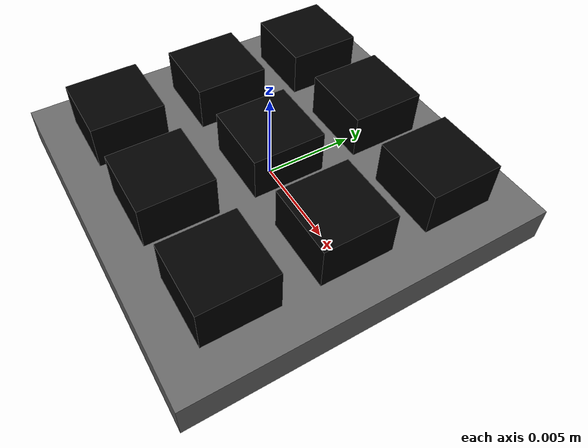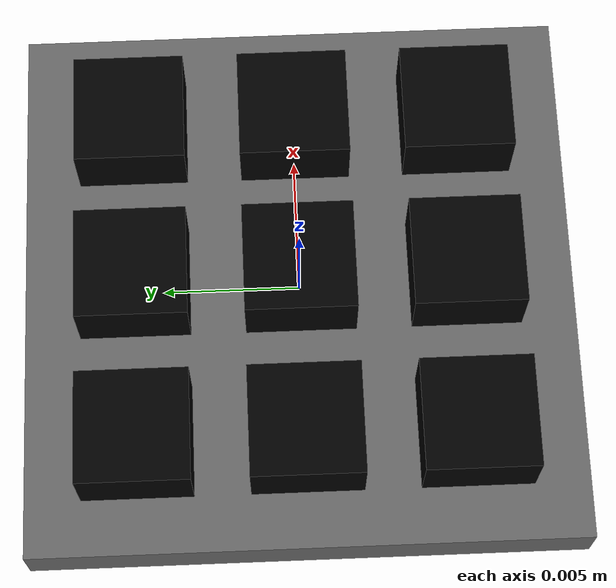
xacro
<?xml version="1.0"?> <!-- 这是版本提示 -->
<robot xmlns:xacro="http://www.ros.org/wiki/xacro">
    <xacro:include filename="$(find robot_description)/urdf/light_robot/common_inertia.xacro"/>

    <!-- 定义整个相机阵列 -->
    <xacro:property name="camera_spacing" value="0.006"/> <!-- 相机间距6mm -->
    <xacro:property name="dense_step" value="${camera_spacing / 2}"/> <!-- 虚拟 dense 步长 s = 3 mm -->
    <xacro:property name="broad_size" value="0.02"/> <!-- 底板 20mm × 20mm -->
    <xacro:property name="cam_size" value="0.004"/> <!-- 相机外观 4mm(要小于间距,否则互相穿模) -->

    <!-- 机器人的camera底板 -->
    <link name="camera_stand_link">
        <!-- 部件的外观描述 -->
        <visual>
            <!-- 沿着自己几何中心偏移和旋转 -->
            <origin xyz="0.0 0.0 0.0" rpy="0.0 0.0 0.0"/>
            <!-- 几何形状 -->
            <geometry>
                <!-- 立方体 -->
                <box size="${broad_size} ${broad_size} 0.002"/>
            </geometry>
            <!-- 材质颜色 -->
            <material name="black">
                <color rgba="0.4 0.4 0.4 1"/>
            </material>
        </visual>
        <collision>
                <!-- 沿着自己几何中心偏移和旋转 -->
                <origin xyz="0.0 0.0 0.0" rpy="0.0 0.0 0.0"/>
                <!-- 几何形状 -->
                <geometry>
                    <!-- 立方体 -->
                    <box size="${broad_size} ${broad_size} 0.002"/>
                </geometry>
                <!-- 材质颜色 -->
                <material name="black">
                    <color rgba="0.4 0.4 0.4 1"/>
                </material>
        </collision>
        <xacro:box_inertia m = "0.1" w="${broad_size}" d="${broad_size}" h="0.002" />
    </link>

    <xacro:macro name ="camera_xacro" params=" index u v">
        <!-- 机器人的camera -->
        <link name="camera_${index}_link">
            <!-- 部件的外观描述 -->
            <visual>
                <!-- 相机外观在本体坐标系中心;实际摆放位置由下面 joint 决定 -->
                <origin xyz="0.0 0.0 0.0" rpy="0.0 0.0 0.0"/>
                <!-- 几何形状 -->
                <geometry>
                    <!-- 立方体 -->
                    <box size="${cam_size} ${cam_size} ${cam_size}"/>
                </geometry>
                <!-- 材质颜色 -->
                <material name="black">
                    <color rgba="0.0 0.0 0.0 1"/>
                </material>
            </visual>
            <collision>
                    <!-- 相机外观在本体坐标系中心;实际摆放位置由下面 joint 决定 -->
                    <origin xyz="0.0 0.0 0.0" rpy="0.0 0.0 0.0"/>
                    <!-- 几何形状 -->
                    <geometry>
                        <!-- 立方体 -->
                        <box size="${cam_size} ${cam_size} ${cam_size}"/>
                    </geometry>
                    <!-- 材质颜色 -->
            </collision>
            <xacro:box_inertia m = "0.1" w="${cam_size}" d="${cam_size}" h="${cam_size}" />
        </link>

        <link name="camera_${index}_optical_link"></link>

        <!-- 机器人的关节，用于组合机器人的部件, type是可动还是不可动 -->
        <joint name="camera_${index}_joint" type="fixed">
            <!-- 关节的父部件 -->
            <parent link="camera_stand_link"/>
            <!-- 关节的子部件 -->
            <child link="camera_${index}_link"/>
            <!-- 物理位置 = dense 角坐标 × dense 步长;z 是贴板高度 -->
            <!-- 绕 Y 轴 -90°:让相机 body 的 +X 朝前(板子法线),即 x前 y左 z上 -->
            <origin xyz="${u * dense_step } ${v * dense_step } 0.0015" rpy="0.0 ${-pi/2} 0.0"/>
        </joint>

        <joint name="camera_${index}_optical_joint" type="fixed">
            <!-- 关节的父部件 -->
            <parent link="camera_${index}_link"/>
            <!-- 关节的子部件 -->
            <child link="camera_${index}_optical_link"/>
            <!-- 标准 body -> optical 变换:x右 y下 z前 -->
            <origin xyz="0 0 0" rpy="${-pi/2} 0.0 ${-pi/2}"/>
        </joint>

        <gazebo reference="camera_stand_link">
            <material>Gazebo/Black</material>
        </gazebo>
        <gazebo reference="camera_${index}_link">
            <material>Gazebo/Red</material>
        </gazebo>

    </xacro:macro>

    <!-- ======== 9 台实例:顺序 = 代码里的 SOURCE_COORDINATES,绝对不能乱 ======== -->
    <xacro:camera_xacro index="0" u="-2" v="-2"/>
    <xacro:camera_xacro index="1" u="-2" v="0"/>
    <xacro:camera_xacro index="2" u="-2" v="2"/>
    <xacro:camera_xacro index="3" u="0"  v="-2"/>
    <xacro:camera_xacro index="4" u="0"  v="0"/>   <!-- 中心相机 -->
    <xacro:camera_xacro index="5" u="0"  v="2"/>
    <xacro:camera_xacro index="6" u="2"  v="-2"/>
    <xacro:camera_xacro index="7" u="2"  v="0"/>
    <xacro:camera_xacro index="8" u="2"  v="2"/>

</robot>

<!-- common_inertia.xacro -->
<robot xmlns:xacro="http://ros.org/wiki/xacro">
    <xacro:macro name="box_inertia" params="m w h d">
        <inertial>
            <mass value="${m}" />
            <inertia ixx="${(m/12) * (h*h + d*d)}" ixy="0.0" ixz="0.0" iyy="${(m/12) * (w*w + d*d)}" iyz="0.0" izz="${(m/12) * (w*w + h*h)}" />
        </inertial>
    </xacro:macro>

    <xacro:macro name="cylinder_inertia" params="m r h">
        <inertial>
            <mass value="${m}" />
            <inertia ixx="${(m/12) * (3*r*r + h*h)}" ixy="0" ixz="0" iyy="${(m/12) * (3*r*r + h*h)}" iyz="0" izz="${(m/2) * (r*r)}" />
        </inertial>
    </xacro:macro>

    <xacro:macro name="sphere_inertia" params="m r">
        <inertial>
            <mass value="${m}" />
            <inertia ixx="${(2/5) * m * (r*r)}" ixy="0.0" ixz="0.0" iyy="${(2/5) * m * (r*r)}" iyz="0.0" izz="${(2/5) * m * (r*r)}" />
        </inertial>
    </xacro:macro>

</robot>
